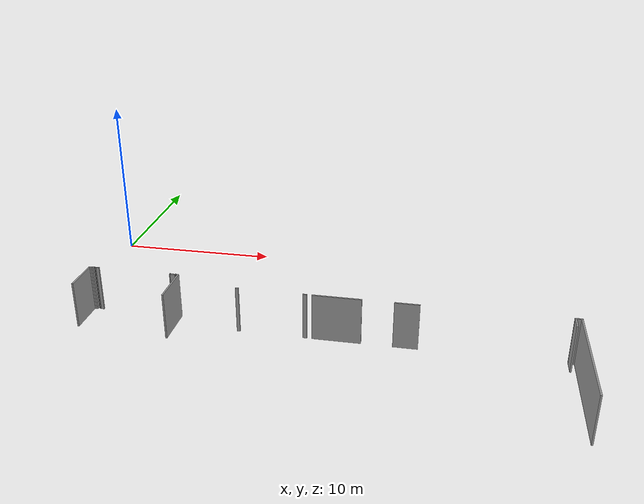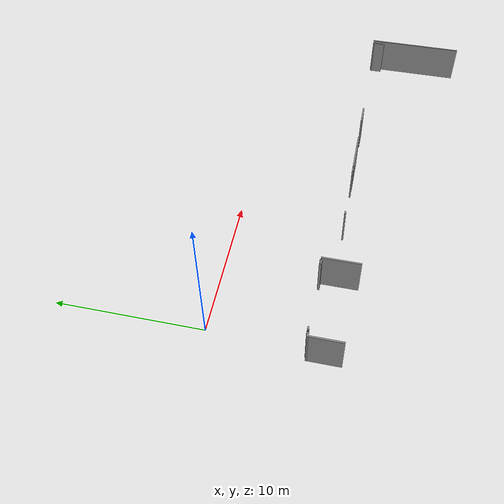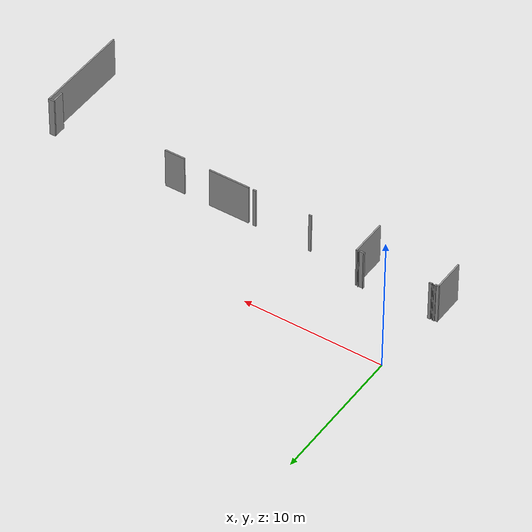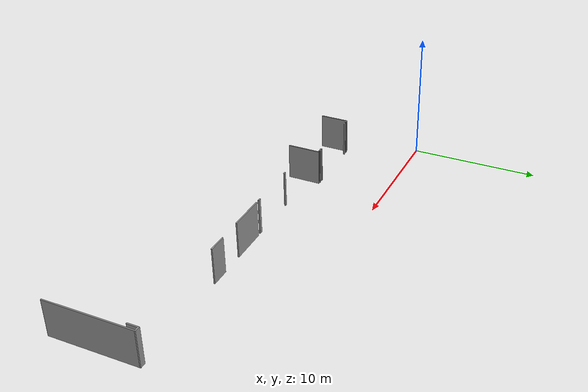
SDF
<sdf version="1.4">
 <model name="RussianRestaurant">
  <static>1</static>
  <link name="Wall_69">
   <collision name="Wall_69_Collision">
    <geometry><box><size>0.05000 0.15000 3.00000</size></box></geometry>
    <pose>5.42500 -6.37500 0 0 0 0.00000</pose>
   </collision>
   <visual name="Wall_69_Visual">
    <geometry><box><size>0.05000 0.15000 3.00000</size></box></geometry>
    <material>
     <script><uri>file://media/materials/scripts/gazebo.material</uri><name>Gazebo/Grey</name></script>
    </material>
    <pose>5.42500 -6.37500 0 0 0 0.00000</pose>
   </visual>
  </link>
  <link name="Wall_70">
   <collision name="Wall_70_Collision">
    <geometry><box><size>0.05000 0.15000 3.00000</size></box></geometry>
    <pose>5.77500 -6.37500 0 0 0 0.00000</pose>
   </collision>
   <visual name="Wall_70_Visual">
    <geometry><box><size>0.05000 0.15000 3.00000</size></box></geometry>
    <material>
     <script><uri>file://media/materials/scripts/gazebo.material</uri><name>Gazebo/Grey</name></script>
    </material>
    <pose>5.77500 -6.37500 0 0 0 0.00000</pose>
   </visual>
  </link>
  <link name="Wall_71">
   <collision name="Wall_71_Collision">
    <geometry><box><size>0.10000 0.15000 3.00000</size></box></geometry>
    <pose>0.25000 -6.42500 0 0 0 0.00000</pose>
   </collision>
   <visual name="Wall_71_Visual">
    <geometry><box><size>0.10000 0.15000 3.00000</size></box></geometry>
    <material>
     <script><uri>file://media/materials/scripts/gazebo.material</uri><name>Gazebo/Grey</name></script>
    </material>
    <pose>0.25000 -6.42500 0 0 0 0.00000</pose>
   </visual>
  </link>
  <link name="Wall_72">
   <collision name="Wall_72_Collision">
    <geometry><box><size>0.05000 0.05000 3.00000</size></box></geometry>
    <pose>0.37500 -6.37500 0 0 0 0.00000</pose>
   </collision>
   <visual name="Wall_72_Visual">
    <geometry><box><size>0.05000 0.05000 3.00000</size></box></geometry>
    <material>
     <script><uri>file://media/materials/scripts/gazebo.material</uri><name>Gazebo/Grey</name></script>
    </material>
    <pose>0.37500 -6.37500 0 0 0 0.00000</pose>
   </visual>
  </link>
  <link name="Wall_73">
   <collision name="Wall_73_Collision">
    <geometry><box><size>0.20000 0.10000 3.00000</size></box></geometry>
    <pose>0.60000 -6.40000 0 0 0 0.00000</pose>
   </collision>
   <visual name="Wall_73_Visual">
    <geometry><box><size>0.20000 0.10000 3.00000</size></box></geometry>
    <material>
     <script><uri>file://media/materials/scripts/gazebo.material</uri><name>Gazebo/Grey</name></script>
    </material>
    <pose>0.60000 -6.40000 0 0 0 0.00000</pose>
   </visual>
  </link>
  <link name="Wall_74">
   <collision name="Wall_74_Collision">
    <geometry><box><size>0.30000 0.10000 3.00000</size></box></geometry>
    <pose>5.60000 -6.40000 0 0 0 0.00000</pose>
   </collision>
   <visual name="Wall_74_Visual">
    <geometry><box><size>0.30000 0.10000 3.00000</size></box></geometry>
    <material>
     <script><uri>file://media/materials/scripts/gazebo.material</uri><name>Gazebo/Grey</name></script>
    </material>
    <pose>5.60000 -6.40000 0 0 0 0.00000</pose>
   </visual>
  </link>
  <link name="Wall_75">
   <collision name="Wall_75_Collision">
    <geometry><box><size>0.05000 0.05000 3.00000</size></box></geometry>
    <pose>5.82500 -6.37500 0 0 0 0.00000</pose>
   </collision>
   <visual name="Wall_75_Visual">
    <geometry><box><size>0.05000 0.05000 3.00000</size></box></geometry>
    <material>
     <script><uri>file://media/materials/scripts/gazebo.material</uri><name>Gazebo/Grey</name></script>
    </material>
    <pose>5.82500 -6.37500 0 0 0 0.00000</pose>
   </visual>
  </link>
  <link name="Wall_76">
   <collision name="Wall_76_Collision">
    <geometry><box><size>0.10000 2.70000 3.00000</size></box></geometry>
    <pose>5.95000 -7.70000 0 0 0 0.00000</pose>
   </collision>
   <visual name="Wall_76_Visual">
    <geometry><box><size>0.10000 2.70000 3.00000</size></box></geometry>
    <material>
     <script><uri>file://media/materials/scripts/gazebo.material</uri><name>Gazebo/Grey</name></script>
    </material>
    <pose>5.95000 -7.70000 0 0 0 0.00000</pose>
   </visual>
  </link>
  <link name="Wall_77">
   <collision name="Wall_77_Collision">
    <geometry><box><size>0.20000 0.10000 3.00000</size></box></geometry>
    <pose>0.10000 -6.45000 0 0 0 0.00000</pose>
   </collision>
   <visual name="Wall_77_Visual">
    <geometry><box><size>0.20000 0.10000 3.00000</size></box></geometry>
    <material>
     <script><uri>file://media/materials/scripts/gazebo.material</uri><name>Gazebo/Grey</name></script>
    </material>
    <pose>0.10000 -6.45000 0 0 0 0.00000</pose>
   </visual>
  </link>
  <link name="Wall_78">
   <collision name="Wall_78_Collision">
    <geometry><box><size>0.05000 0.05000 3.00000</size></box></geometry>
    <pose>0.47500 -6.42500 0 0 0 0.00000</pose>
   </collision>
   <visual name="Wall_78_Visual">
    <geometry><box><size>0.05000 0.05000 3.00000</size></box></geometry>
    <material>
     <script><uri>file://media/materials/scripts/gazebo.material</uri><name>Gazebo/Grey</name></script>
    </material>
    <pose>0.47500 -6.42500 0 0 0 0.00000</pose>
   </visual>
  </link>
  <link name="Wall_79">
   <collision name="Wall_79_Collision">
    <geometry><box><size>0.10000 2.25000 3.00000</size></box></geometry>
    <pose>0.05000 -7.62500 0 0 0 0.00000</pose>
   </collision>
   <visual name="Wall_79_Visual">
    <geometry><box><size>0.10000 2.25000 3.00000</size></box></geometry>
    <material>
     <script><uri>file://media/materials/scripts/gazebo.material</uri><name>Gazebo/Grey</name></script>
    </material>
    <pose>0.05000 -7.62500 0 0 0 0.00000</pose>
   </visual>
  </link>
  <link name="Wall_80">
   <collision name="Wall_80_Collision">
    <geometry><box><size>0.45000 0.10000 3.00000</size></box></geometry>
    <pose>29.87500 -7.30000 0 0 0 0.00000</pose>
   </collision>
   <visual name="Wall_80_Visual">
    <geometry><box><size>0.45000 0.10000 3.00000</size></box></geometry>
    <material>
     <script><uri>file://media/materials/scripts/gazebo.material</uri><name>Gazebo/Grey</name></script>
    </material>
    <pose>29.87500 -7.30000 0 0 0 0.00000</pose>
   </visual>
  </link>
  <link name="Wall_81">
   <collision name="Wall_81_Collision">
    <geometry><box><size>0.20000 0.10000 3.00000</size></box></geometry>
    <pose>10.05000 -7.40000 0 0 0 0.00000</pose>
   </collision>
   <visual name="Wall_81_Visual">
    <geometry><box><size>0.20000 0.10000 3.00000</size></box></geometry>
    <material>
     <script><uri>file://media/materials/scripts/gazebo.material</uri><name>Gazebo/Grey</name></script>
    </material>
    <pose>10.05000 -7.40000 0 0 0 0.00000</pose>
   </visual>
  </link>
  <link name="Wall_82">
   <collision name="Wall_82_Collision">
    <geometry><box><size>0.25000 0.10000 3.00000</size></box></geometry>
    <pose>14.22500 -7.40000 0 0 0 0.00000</pose>
   </collision>
   <visual name="Wall_82_Visual">
    <geometry><box><size>0.25000 0.10000 3.00000</size></box></geometry>
    <material>
     <script><uri>file://media/materials/scripts/gazebo.material</uri><name>Gazebo/Grey</name></script>
    </material>
    <pose>14.22500 -7.40000 0 0 0 0.00000</pose>
   </visual>
  </link>
  <link name="Wall_83">
   <collision name="Wall_83_Collision">
    <geometry><box><size>3.00000 0.10000 3.00000</size></box></geometry>
    <pose>16.15000 -7.40000 0 0 0 0.00000</pose>
   </collision>
   <visual name="Wall_83_Visual">
    <geometry><box><size>3.00000 0.10000 3.00000</size></box></geometry>
    <material>
     <script><uri>file://media/materials/scripts/gazebo.material</uri><name>Gazebo/Grey</name></script>
    </material>
    <pose>16.15000 -7.40000 0 0 0 0.00000</pose>
   </visual>
  </link>
  <link name="Wall_84">
   <collision name="Wall_84_Collision">
    <geometry><box><size>1.50000 0.10000 3.00000</size></box></geometry>
    <pose>20.30000 -7.40000 0 0 0 0.00000</pose>
   </collision>
   <visual name="Wall_84_Visual">
    <geometry><box><size>1.50000 0.10000 3.00000</size></box></geometry>
    <material>
     <script><uri>file://media/materials/scripts/gazebo.material</uri><name>Gazebo/Grey</name></script>
    </material>
    <pose>20.30000 -7.40000 0 0 0 0.00000</pose>
   </visual>
  </link>
  <link name="Wall_85">
   <collision name="Wall_85_Collision">
    <geometry><box><size>0.10000 0.85000 3.00000</size></box></geometry>
    <pose>29.70000 -7.77500 0 0 0 0.00000</pose>
   </collision>
   <visual name="Wall_85_Visual">
    <geometry><box><size>0.10000 0.85000 3.00000</size></box></geometry>
    <material>
     <script><uri>file://media/materials/scripts/gazebo.material</uri><name>Gazebo/Grey</name></script>
    </material>
    <pose>29.70000 -7.77500 0 0 0 0.00000</pose>
   </visual>
  </link>
  <link name="Wall_86">
   <collision name="Wall_86_Collision">
    <geometry><box><size>0.10000 7.10000 3.00000</size></box></geometry>
    <pose>30.05000 -10.90000 0 0 0 0.00000</pose>
   </collision>
   <visual name="Wall_86_Visual">
    <geometry><box><size>0.10000 7.10000 3.00000</size></box></geometry>
    <material>
     <script><uri>file://media/materials/scripts/gazebo.material</uri><name>Gazebo/Grey</name></script>
    </material>
    <pose>30.05000 -10.90000 0 0 0 0.00000</pose>
   </visual>
  </link>
 </model>
</sdf>
